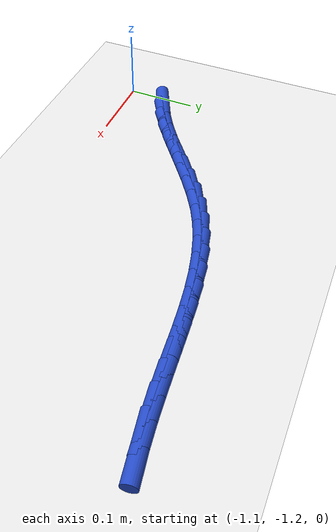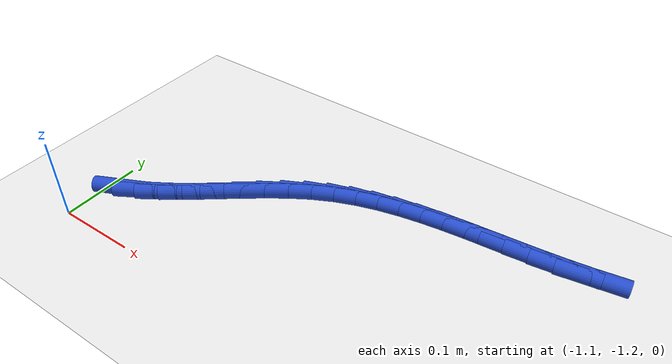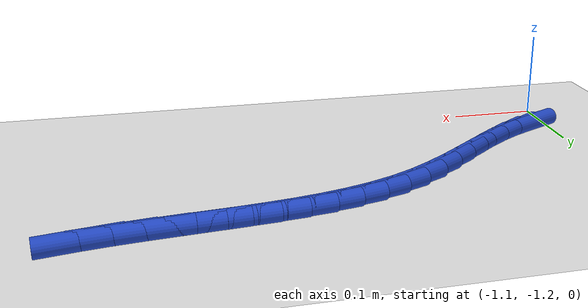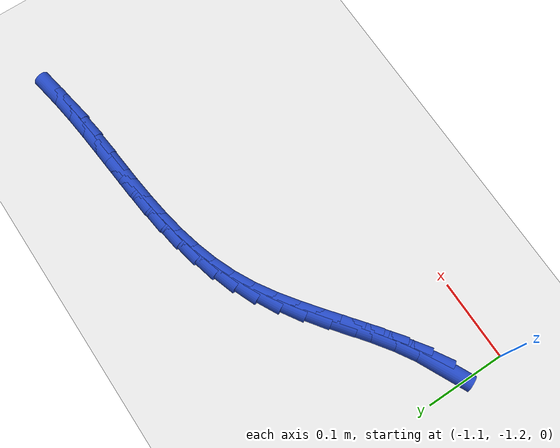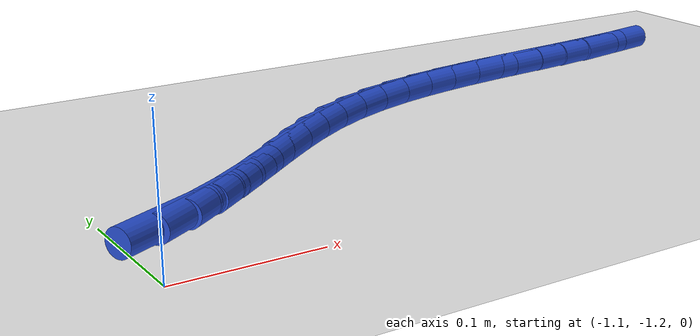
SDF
<sdf version="1.6">
 <world name="default">
  <model name="ground_plane">
   <static>1</static>
   <link name="link">
    <collision name="collision">
     <geometry><plane><normal>0 0 1</normal><size>100 100</size></plane></geometry>
     <surface><friction><ode><mu>100</mu><mu2>50</mu2></ode></friction></surface>
    </collision>
    <visual name="visual">
     <cast_shadows>0</cast_shadows>
     <geometry><plane><normal>0 0 1</normal><size>100 100</size></plane></geometry>
     <material>
      <script><uri>file://media/materials/scripts/gazebo.material</uri><name>Gazebo/WhiteGlow</name></script>
     </material>
    </visual>
   </link>
  </model>
  <model name="line">
   <link name="link_188">
    <pose>-1.0705140637352402 -1.1341154117751042 0.01 0 1.57 0.4474479701825136</pose>
    <collision name="collision">
     <geometry><cylinder><radius>0.01</radius><length>0.08</length></cylinder></geometry>
    </collision>
    <visual name="visual">
     <material>
      <script><name>Gazebo/Blue</name><uri>file://media/materials/scripts/gazebo.material</uri></script>
     </material>
     <geometry><cylinder><radius>0.01</radius><length>0.08</length></cylinder></geometry>
    </visual>
   </link>
   <link name="link_189">
    <pose>-1.0467041799813595 -1.1226887769351064 0.01 0 1.57 0.5474029729575544</pose>
    <collision name="collision">
     <geometry><cylinder><radius>0.01</radius><length>0.08</length></cylinder></geometry>
    </collision>
    <visual name="visual">
     <material>
      <script><name>Gazebo/Blue</name><uri>file://media/materials/scripts/gazebo.material</uri></script>
     </material>
     <geometry><cylinder><radius>0.01</radius><length>0.08</length></cylinder></geometry>
    </visual>
   </link>
   <link name="link_190">
    <pose>-1.0232146207032788 -1.1083710063748318 0.01 0 1.57 0.6139102500427673</pose>
    <collision name="collision">
     <geometry><cylinder><radius>0.01</radius><length>0.08</length></cylinder></geometry>
    </collision>
    <visual name="visual">
     <material>
      <script><name>Gazebo/Blue</name><uri>file://media/materials/scripts/gazebo.material</uri></script>
     </material>
     <geometry><cylinder><radius>0.01</radius><length>0.08</length></cylinder></geometry>
    </visual>
   </link>
   <link name="link_191">
    <pose>-0.9999088835344151 -1.091946166891032 0.01 0 1.57 0.6518146818685632</pose>
    <collision name="collision">
     <geometry><cylinder><radius>0.01</radius><length>0.08</length></cylinder></geometry>
    </collision>
    <visual name="visual">
     <material>
      <script><name>Gazebo/Blue</name><uri>file://media/materials/scripts/gazebo.material</uri></script>
     </material>
     <geometry><cylinder><radius>0.01</radius><length>0.08</length></cylinder></geometry>
    </visual>
   </link>
   <link name="link_192">
    <pose>-0.9766504661081837 -1.074198325280458 0.01 0 1.57 0.6644376262644319</pose>
    <collision name="collision">
     <geometry><cylinder><radius>0.01</radius><length>0.08</length></cylinder></geometry>
    </collision>
    <visual name="visual">
     <material>
      <script><name>Gazebo/Blue</name><uri>file://media/materials/scripts/gazebo.material</uri></script>
     </material>
     <geometry><cylinder><radius>0.01</radius><length>0.08</length></cylinder></geometry>
    </visual>
   </link>
   <link name="link_193">
    <pose>-0.9533028660580003 -1.0559115483398611 0.01 0 1.57 0.6532484454264639</pose>
    <collision name="collision">
     <geometry><cylinder><radius>0.01</radius><length>0.08</length></cylinder></geometry>
    </collision>
    <visual name="visual">
     <material>
      <script><name>Gazebo/Blue</name><uri>file://media/materials/scripts/gazebo.material</uri></script>
     </material>
     <geometry><cylinder><radius>0.01</radius><length>0.08</length></cylinder></geometry>
    </visual>
   </link>
   <link name="link_194">
    <pose>-0.929729581017281 -1.0378699028659915 0.01 0 1.57 0.6179129625909536</pose>
    <collision name="collision">
     <geometry><cylinder><radius>0.01</radius><length>0.08</length></cylinder></geometry>
    </collision>
    <visual name="visual">
     <material>
      <script><name>Gazebo/Blue</name><uri>file://media/materials/scripts/gazebo.material</uri></script>
     </material>
     <geometry><cylinder><radius>0.01</radius><length>0.08</length></cylinder></geometry>
    </visual>
   </link>
   <link name="link_195">
    <pose>-0.905794108619442 -1.0208574556556012 0.01 0 1.57 0.5564725454576124</pose>
    <collision name="collision">
     <geometry><cylinder><radius>0.01</radius><length>0.08</length></cylinder></geometry>
    </collision>
    <visual name="visual">
     <material>
      <script><name>Gazebo/Blue</name><uri>file://media/materials/scripts/gazebo.material</uri></script>
     </material>
     <geometry><cylinder><radius>0.01</radius><length>0.08</length></cylinder></geometry>
    </visual>
   </link>
   <link name="link_196">
    <pose>-0.8813599464978995 -1.0056582735054413 0.01 0 1.57 0.4697928629707551</pose>
    <collision name="collision">
     <geometry><cylinder><radius>0.01</radius><length>0.08</length></cylinder></geometry>
    </collision>
    <visual name="visual">
     <material>
      <script><name>Gazebo/Blue</name><uri>file://media/materials/scripts/gazebo.material</uri></script>
     </material>
     <geometry><cylinder><radius>0.01</radius><length>0.08</length></cylinder></geometry>
    </visual>
   </link>
   <link name="link_197">
    <pose>-0.8563110632402412 -0.9929408217121426 0.01 0 1.57 0.38127267329718983</pose>
    <collision name="collision">
     <geometry><cylinder><radius>0.01</radius><length>0.08</length></cylinder></geometry>
    </collision>
    <visual name="visual">
     <material>
      <script><name>Gazebo/Blue</name><uri>file://media/materials/scripts/gazebo.material</uri></script>
     </material>
     <geometry><cylinder><radius>0.01</radius><length>0.08</length></cylinder></geometry>
    </visual>
   </link>
   <link name="link_198">
    <pose>-0.8306583325850991 -0.9826569196500236 0.01 0 1.57 0.3024042759296469</pose>
    <collision name="collision">
     <geometry><cylinder><radius>0.01</radius><length>0.08</length></cylinder></geometry>
    </collision>
    <visual name="visual">
     <material>
      <script><name>Gazebo/Blue</name><uri>file://media/materials/scripts/gazebo.material</uri></script>
     </material>
     <geometry><cylinder><radius>0.01</radius><length>0.08</length></cylinder></geometry>
    </visual>
   </link>
   <link name="link_199">
    <pose>-0.8044611939671147 -0.9744841314112151 0.01 0 1.57 0.23487095168329447</pose>
    <collision name="collision">
     <geometry><cylinder><radius>0.01</radius><length>0.08</length></cylinder></geometry>
    </collision>
    <visual name="visual">
     <material>
      <script><name>Gazebo/Blue</name><uri>file://media/materials/scripts/gazebo.material</uri></script>
     </material>
     <geometry><cylinder><radius>0.01</radius><length>0.08</length></cylinder></geometry>
    </visual>
   </link>
   <link name="link_200">
    <pose>-0.7777791850207684 -0.9680994665436663 0.01 0 1.57 0.1795293912835596</pose>
    <collision name="collision">
     <geometry><cylinder><radius>0.01</radius><length>0.08</length></cylinder></geometry>
    </collision>
    <visual name="visual">
     <material>
      <script><name>Gazebo/Blue</name><uri>file://media/materials/scripts/gazebo.material</uri></script>
     </material>
     <geometry><cylinder><radius>0.01</radius><length>0.08</length></cylinder></geometry>
    </visual>
   </link>
   <link name="link_201">
    <pose>-0.7506718433805393 -0.9631799345953248 0.01 0 1.57 0.13663720322169615</pose>
    <collision name="collision">
     <geometry><cylinder><radius>0.01</radius><length>0.08</length></cylinder></geometry>
    </collision>
    <visual name="visual">
     <material>
      <script><name>Gazebo/Blue</name><uri>file://media/materials/scripts/gazebo.material</uri></script>
     </material>
     <geometry><cylinder><radius>0.01</radius><length>0.08</length></cylinder></geometry>
    </visual>
   </link>
   <link name="link_202">
    <pose>-0.7231987066809075 -0.9594025451141392 0.01 0 1.57 0.10609052874939626</pose>
    <collision name="collision">
     <geometry><cylinder><radius>0.01</radius><length>0.08</length></cylinder></geometry>
    </collision>
    <visual name="visual">
     <material>
      <script><name>Gazebo/Blue</name><uri>file://media/materials/scripts/gazebo.material</uri></script>
     </material>
     <geometry><cylinder><radius>0.01</radius><length>0.08</length></cylinder></geometry>
    </visual>
   </link>
   <link name="link_203">
    <pose>-0.6954193125563529 -0.9564443076480584 0.01 0 1.57 0.08762439847537241</pose>
    <collision name="collision">
     <geometry><cylinder><radius>0.01</radius><length>0.08</length></cylinder></geometry>
    </collision>
    <visual name="visual">
     <material>
      <script><name>Gazebo/Blue</name><uri>file://media/materials/scripts/gazebo.material</uri></script>
     </material>
     <geometry><cylinder><radius>0.01</radius><length>0.08</length></cylinder></geometry>
    </visual>
   </link>
   <link name="link_204">
    <pose>-0.6673931986413549 -0.95398223174503 0.01 0 1.57 0.08095129276261358</pose>
    <collision name="collision">
     <geometry><cylinder><radius>0.01</radius><length>0.08</length></cylinder></geometry>
    </collision>
    <visual name="visual">
     <material>
      <script><name>Gazebo/Blue</name><uri>file://media/materials/scripts/gazebo.material</uri></script>
     </material>
     <geometry><cylinder><radius>0.01</radius><length>0.08</length></cylinder></geometry>
    </visual>
   </link>
   <link name="link_205">
    <pose>-0.6391799025703935 -0.951693326953003 0.01 0 1.57 0.08583806642765547</pose>
    <collision name="collision">
     <geometry><cylinder><radius>0.01</radius><length>0.08</length></cylinder></geometry>
    </collision>
    <visual name="visual">
     <material>
      <script><name>Gazebo/Blue</name><uri>file://media/materials/scripts/gazebo.material</uri></script>
     </material>
     <geometry><cylinder><radius>0.01</radius><length>0.08</length></cylinder></geometry>
    </visual>
   </link>
   <link name="link_206">
    <pose>-0.6108389619779484 -0.9492546028199254 0.01 0 1.57 0.10212957727594842</pose>
    <collision name="collision">
     <geometry><cylinder><radius>0.01</radius><length>0.08</length></cylinder></geometry>
    </collision>
    <visual name="visual">
     <material>
      <script><name>Gazebo/Blue</name><uri>file://media/materials/scripts/gazebo.material</uri></script>
     </material>
     <geometry><cylinder><radius>0.01</radius><length>0.08</length></cylinder></geometry>
    </visual>
   </link>
   <link name="link_207">
    <pose>-0.5824299144984992 -0.9463430688937456 0.01 0 1.57 0.12965516371286329</pose>
    <collision name="collision">
     <geometry><cylinder><radius>0.01</radius><length>0.08</length></cylinder></geometry>
    </collision>
    <visual name="visual">
     <material>
      <script><name>Gazebo/Blue</name><uri>file://media/materials/scripts/gazebo.material</uri></script>
     </material>
     <geometry><cylinder><radius>0.01</radius><length>0.08</length></cylinder></geometry>
    </visual>
   </link>
   <link name="link_208">
    <pose>-0.5540137624735103 -0.9426379833470111 0.01 0 1.57 0.16563320321448147</pose>
    <collision name="collision">
     <geometry><cylinder><radius>0.01</radius><length>0.08</length></cylinder></geometry>
    </collision>
    <visual name="visual">
     <material>
      <script><name>Gazebo/Blue</name><uri>file://media/materials/scripts/gazebo.material</uri></script>
     </material>
     <geometry><cylinder><radius>0.01</radius><length>0.08</length></cylinder></geometry>
    </visual>
   </link>
  </model>
 </world>
</sdf>
